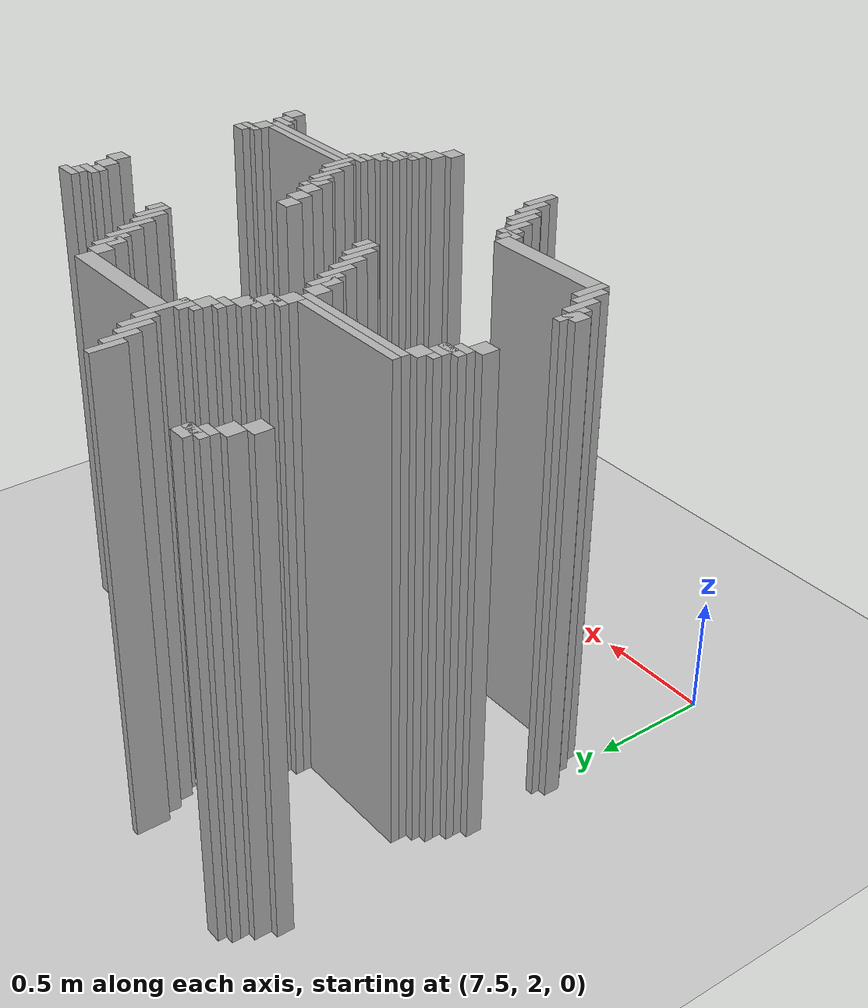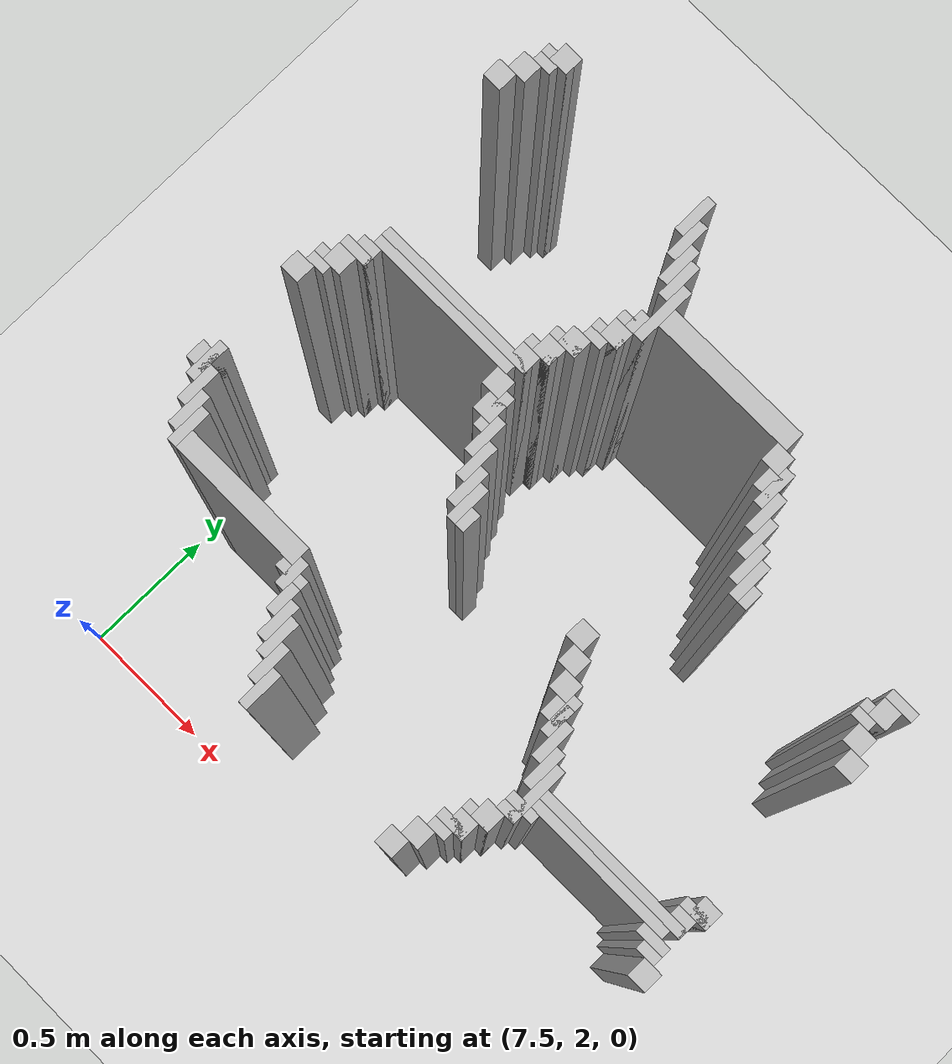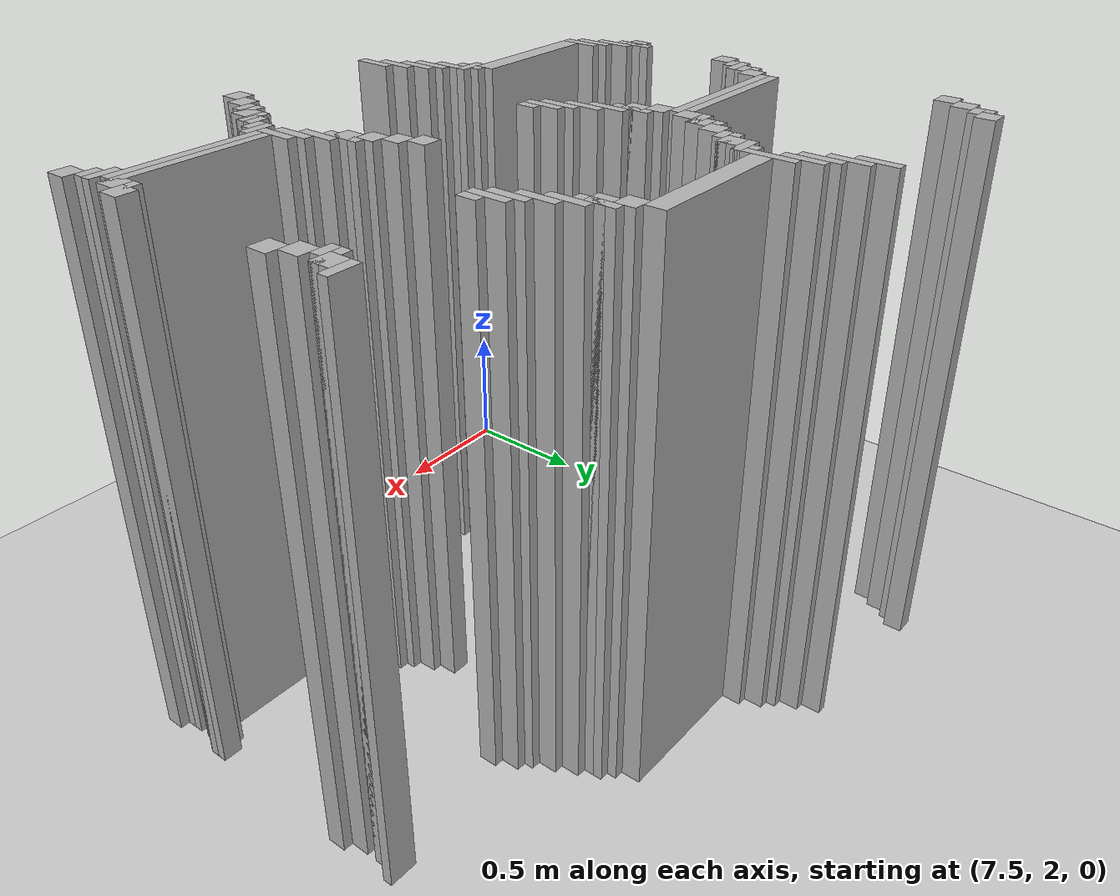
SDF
<sdf version="1.6">
 <world name="slam_world">
  <model name="ground_plane">
   <static>true</static>
   <link name="link">
    <collision name="collision">
     <geometry><plane><normal>0 0 1</normal><size>100 100</size></plane></geometry>
    </collision>
    <visual name="visual">
     <geometry><plane><normal>0 0 1</normal><size>100 100</size></plane></geometry>
     <material>
      <ambient>0.8 0.8 0.8 1</ambient>
      <diffuse>0.8 0.8 0.8 1</diffuse>
      <specular>0.8 0.8 0.8 1</specular>
     </material>
    </visual>
   </link>
  </model>
  <model name="wall_4448">
   <static>true</static>
   <pose>7.587006960556844 4.211136890951276 1.0 0 0 0</pose>
   <link name="link">
    <collision name="collision">
     <geometry><box><size>0.06960556844547564 0.06960556844547564 2.0</size></box></geometry>
    </collision>
    <visual name="visual">
     <geometry><box><size>0.06960556844547564 0.06960556844547564 2.0</size></box></geometry>
     <material><ambient>0.5 0.5 0.5 1</ambient><diffuse>0.7 0.7 0.7 1</diffuse></material>
    </visual>
   </link>
  </model>
  <model name="wall_4463">
   <static>true</static>
   <pose>7.569605568445476 4.193735498839907 1.0 0 0 0</pose>
   <link name="link">
    <collision name="collision">
     <geometry><box><size>0.10440835266821345 0.03480278422273782 2.0</size></box></geometry>
    </collision>
    <visual name="visual">
     <geometry><box><size>0.10440835266821345 0.03480278422273782 2.0</size></box></geometry>
     <material><ambient>0.5 0.5 0.5 1</ambient><diffuse>0.7 0.7 0.7 1</diffuse></material>
    </visual>
   </link>
  </model>
  <model name="wall_4464">
   <static>true</static>
   <pose>8.196055684454755 4.1415313225058 1.0 0 0 0</pose>
   <link name="link">
    <collision name="collision">
     <geometry><box><size>0.03480278422273782 0.13921113689095127 2.0</size></box></geometry>
    </collision>
    <visual name="visual">
     <geometry><box><size>0.03480278422273782 0.13921113689095127 2.0</size></box></geometry>
     <material><ambient>0.5 0.5 0.5 1</ambient><diffuse>0.7 0.7 0.7 1</diffuse></material>
    </visual>
   </link>
  </model>
  <model name="wall_4476">
   <static>true</static>
   <pose>7.552204176334106 4.158932714617169 1.0 0 0 0</pose>
   <link name="link">
    <collision name="collision">
     <geometry><box><size>0.06960556844547564 0.03480278422273782 2.0</size></box></geometry>
    </collision>
    <visual name="visual">
     <geometry><box><size>0.06960556844547564 0.03480278422273782 2.0</size></box></geometry>
     <material><ambient>0.5 0.5 0.5 1</ambient><diffuse>0.7 0.7 0.7 1</diffuse></material>
    </visual>
   </link>
  </model>
  <model name="wall_4488">
   <static>true</static>
   <pose>7.517401392111369 4.106728538283062 1.0 0 0 0</pose>
   <link name="link">
    <collision name="collision">
     <geometry><box><size>0.06960556844547564 0.06960556844547564 2.0</size></box></geometry>
    </collision>
    <visual name="visual">
     <geometry><box><size>0.06960556844547564 0.06960556844547564 2.0</size></box></geometry>
     <material><ambient>0.5 0.5 0.5 1</ambient><diffuse>0.7 0.7 0.7 1</diffuse></material>
    </visual>
   </link>
  </model>
  <model name="wall_4489">
   <static>true</static>
   <pose>8.230858468677495 4.071925754060325 1.0 0 0 0</pose>
   <link name="link">
    <collision name="collision">
     <geometry><box><size>0.03480278422273782 0.13921113689095127 2.0</size></box></geometry>
    </collision>
    <visual name="visual">
     <geometry><box><size>0.03480278422273782 0.13921113689095127 2.0</size></box></geometry>
     <material><ambient>0.5 0.5 0.5 1</ambient><diffuse>0.7 0.7 0.7 1</diffuse></material>
    </visual>
   </link>
  </model>
  <model name="wall_4503">
   <static>true</static>
   <pose>7.48259860788863 4.037122969837587 1.0 0 0 0</pose>
   <link name="link">
    <collision name="collision">
     <geometry><box><size>0.06960556844547564 0.06960556844547564 2.0</size></box></geometry>
    </collision>
    <visual name="visual">
     <geometry><box><size>0.06960556844547564 0.06960556844547564 2.0</size></box></geometry>
     <material><ambient>0.5 0.5 0.5 1</ambient><diffuse>0.7 0.7 0.7 1</diffuse></material>
    </visual>
   </link>
  </model>
  <model name="wall_4504">
   <static>true</static>
   <pose>8.265661252900232 4.002320185614849 1.0 0 0 0</pose>
   <link name="link">
    <collision name="collision">
     <geometry><box><size>0.03480278422273782 0.13921113689095127 2.0</size></box></geometry>
    </collision>
    <visual name="visual">
     <geometry><box><size>0.03480278422273782 0.13921113689095127 2.0</size></box></geometry>
     <material><ambient>0.5 0.5 0.5 1</ambient><diffuse>0.7 0.7 0.7 1</diffuse></material>
    </visual>
   </link>
  </model>
  <model name="wall_4519">
   <static>true</static>
   <pose>8.30046403712297 3.967517401392111 1.0 0 0 0</pose>
   <link name="link">
    <collision name="collision">
     <geometry><box><size>0.03480278422273782 0.13921113689095127 2.0</size></box></geometry>
    </collision>
    <visual name="visual">
     <geometry><box><size>0.03480278422273782 0.13921113689095127 2.0</size></box></geometry>
     <material><ambient>0.5 0.5 0.5 1</ambient><diffuse>0.7 0.7 0.7 1</diffuse></material>
    </visual>
   </link>
  </model>
  <model name="wall_4542">
   <static>true</static>
   <pose>8.335266821345707 3.863109048723898 1.0 0 0 0</pose>
   <link name="link">
    <collision name="collision">
     <geometry><box><size>0.03480278422273782 0.2088167053364269 2.0</size></box></geometry>
    </collision>
    <visual name="visual">
     <geometry><box><size>0.03480278422273782 0.2088167053364269 2.0</size></box></geometry>
     <material><ambient>0.5 0.5 0.5 1</ambient><diffuse>0.7 0.7 0.7 1</diffuse></material>
    </visual>
   </link>
  </model>
  <model name="wall_4564">
   <static>true</static>
   <pose>8.61368909512761 3.863109048723898 1.0 0 0 0</pose>
   <link name="link">
    <collision name="collision">
     <geometry><box><size>0.5220417633410672 0.06960556844547564 2.0</size></box></geometry>
    </collision>
    <visual name="visual">
     <geometry><box><size>0.5220417633410672 0.06960556844547564 2.0</size></box></geometry>
     <material><ambient>0.5 0.5 0.5 1</ambient><diffuse>0.7 0.7 0.7 1</diffuse></material>
    </visual>
   </link>
  </model>
  <model name="wall_4579">
   <static>true</static>
   <pose>8.317865429234338 3.793503480278422 1.0 0 0 0</pose>
   <link name="link">
    <collision name="collision">
     <geometry><box><size>0.06960556844547564 0.06960556844547564 2.0</size></box></geometry>
    </collision>
    <visual name="visual">
     <geometry><box><size>0.06960556844547564 0.06960556844547564 2.0</size></box></geometry>
     <material><ambient>0.5 0.5 0.5 1</ambient><diffuse>0.7 0.7 0.7 1</diffuse></material>
    </visual>
   </link>
  </model>
  <model name="wall_4580">
   <static>true</static>
   <pose>8.874709976798144 3.793503480278422 1.0 0 0 0</pose>
   <link name="link">
    <collision name="collision">
     <geometry><box><size>0.06960556844547564 0.06960556844547564 2.0</size></box></geometry>
    </collision>
    <visual name="visual">
     <geometry><box><size>0.06960556844547564 0.06960556844547564 2.0</size></box></geometry>
     <material><ambient>0.5 0.5 0.5 1</ambient><diffuse>0.7 0.7 0.7 1</diffuse></material>
    </visual>
   </link>
  </model>
  <model name="wall_4593">
   <static>true</static>
   <pose>8.30046403712297 3.776102088167053 1.0 0 0 0</pose>
   <link name="link">
    <collision name="collision">
     <geometry><box><size>0.10440835266821345 0.03480278422273782 2.0</size></box></geometry>
    </collision>
    <visual name="visual">
     <geometry><box><size>0.10440835266821345 0.03480278422273782 2.0</size></box></geometry>
     <material><ambient>0.5 0.5 0.5 1</ambient><diffuse>0.7 0.7 0.7 1</diffuse></material>
    </visual>
   </link>
  </model>
  <model name="wall_4594">
   <static>true</static>
   <pose>8.92691415313225 3.7238979118329465 1.0 0 0 0</pose>
   <link name="link">
    <collision name="collision">
     <geometry><box><size>0.03480278422273782 0.13921113689095127 2.0</size></box></geometry>
    </collision>
    <visual name="visual">
     <geometry><box><size>0.03480278422273782 0.13921113689095127 2.0</size></box></geometry>
     <material><ambient>0.5 0.5 0.5 1</ambient><diffuse>0.7 0.7 0.7 1</diffuse></material>
    </visual>
   </link>
  </model>
  <model name="wall_4607">
   <static>true</static>
   <pose>8.2830626450116 3.7238979118329465 1.0 0 0 0</pose>
   <link name="link">
    <collision name="collision">
     <geometry><box><size>0.06960556844547564 0.06960556844547564 2.0</size></box></geometry>
    </collision>
    <visual name="visual">
     <geometry><box><size>0.06960556844547564 0.06960556844547564 2.0</size></box></geometry>
     <material><ambient>0.5 0.5 0.5 1</ambient><diffuse>0.7 0.7 0.7 1</diffuse></material>
    </visual>
   </link>
  </model>
  <model name="wall_4608">
   <static>true</static>
   <pose>8.909512761020881 3.7238979118329465 1.0 0 0 0</pose>
   <link name="link">
    <collision name="collision">
     <geometry><box><size>0.06960556844547564 0.06960556844547564 2.0</size></box></geometry>
    </collision>
    <visual name="visual">
     <geometry><box><size>0.06960556844547564 0.06960556844547564 2.0</size></box></geometry>
     <material><ambient>0.5 0.5 0.5 1</ambient><diffuse>0.7 0.7 0.7 1</diffuse></material>
    </visual>
   </link>
  </model>
  <model name="wall_4621">
   <static>true</static>
   <pose>8.265661252900232 3.706496519721578 1.0 0 0 0</pose>
   <link name="link">
    <collision name="collision">
     <geometry><box><size>0.10440835266821345 0.03480278422273782 2.0</size></box></geometry>
    </collision>
    <visual name="visual">
     <geometry><box><size>0.10440835266821345 0.03480278422273782 2.0</size></box></geometry>
     <material><ambient>0.5 0.5 0.5 1</ambient><diffuse>0.7 0.7 0.7 1</diffuse></material>
    </visual>
   </link>
  </model>
  <model name="wall_4622">
   <static>true</static>
   <pose>8.961716937354987 3.6542923433874708 1.0 0 0 0</pose>
   <link name="link">
    <collision name="collision">
     <geometry><box><size>0.03480278422273782 0.13921113689095127 2.0</size></box></geometry>
    </collision>
    <visual name="visual">
     <geometry><box><size>0.03480278422273782 0.13921113689095127 2.0</size></box></geometry>
     <material><ambient>0.5 0.5 0.5 1</ambient><diffuse>0.7 0.7 0.7 1</diffuse></material>
    </visual>
   </link>
  </model>
  <model name="wall_4632">
   <static>true</static>
   <pose>8.248259860788863 3.67169373549884 1.0 0 0 0</pose>
   <link name="link">
    <collision name="collision">
     <geometry><box><size>0.06960556844547564 0.03480278422273782 2.0</size></box></geometry>
    </collision>
    <visual name="visual">
     <geometry><box><size>0.06960556844547564 0.03480278422273782 2.0</size></box></geometry>
     <material><ambient>0.5 0.5 0.5 1</ambient><diffuse>0.7 0.7 0.7 1</diffuse></material>
    </visual>
   </link>
  </model>
  <model name="wall_4644">
   <static>true</static>
   <pose>8.213457076566124 3.619489559164733 1.0 0 0 0</pose>
   <link name="link">
    <collision name="collision">
     <geometry><box><size>0.06960556844547564 0.06960556844547564 2.0</size></box></geometry>
    </collision>
    <visual name="visual">
     <geometry><box><size>0.06960556844547564 0.06960556844547564 2.0</size></box></geometry>
     <material><ambient>0.5 0.5 0.5 1</ambient><diffuse>0.7 0.7 0.7 1</diffuse></material>
    </visual>
   </link>
  </model>
  <model name="wall_4645">
   <static>true</static>
   <pose>8.996519721577727 3.584686774941995 1.0 0 0 0</pose>
   <link name="link">
    <collision name="collision">
     <geometry><box><size>0.03480278422273782 0.13921113689095127 2.0</size></box></geometry>
    </collision>
    <visual name="visual">
     <geometry><box><size>0.03480278422273782 0.13921113689095127 2.0</size></box></geometry>
     <material><ambient>0.5 0.5 0.5 1</ambient><diffuse>0.7 0.7 0.7 1</diffuse></material>
    </visual>
   </link>
  </model>
  <model name="wall_4655">
   <static>true</static>
   <pose>8.196055684454755 3.602088167053364 1.0 0 0 0</pose>
   <link name="link">
    <collision name="collision">
     <geometry><box><size>0.10440835266821345 0.03480278422273782 2.0</size></box></geometry>
    </collision>
    <visual name="visual">
     <geometry><box><size>0.10440835266821345 0.03480278422273782 2.0</size></box></geometry>
     <material><ambient>0.5 0.5 0.5 1</ambient><diffuse>0.7 0.7 0.7 1</diffuse></material>
    </visual>
   </link>
  </model>
  <model name="wall_4667">
   <static>true</static>
   <pose>8.178654292343387 3.549883990719257 1.0 0 0 0</pose>
   <link name="link">
    <collision name="collision">
     <geometry><box><size>0.06960556844547564 0.06960556844547564 2.0</size></box></geometry>
    </collision>
    <visual name="visual">
     <geometry><box><size>0.06960556844547564 0.06960556844547564 2.0</size></box></geometry>
     <material><ambient>0.5 0.5 0.5 1</ambient><diffuse>0.7 0.7 0.7 1</diffuse></material>
    </visual>
   </link>
  </model>
  <model name="wall_4668">
   <static>true</static>
   <pose>9.031322505800464 3.51508120649652 1.0 0 0 0</pose>
   <link name="link">
    <collision name="collision">
     <geometry><box><size>0.03480278422273782 0.13921113689095127 2.0</size></box></geometry>
    </collision>
    <visual name="visual">
     <geometry><box><size>0.03480278422273782 0.13921113689095127 2.0</size></box></geometry>
     <material><ambient>0.5 0.5 0.5 1</ambient><diffuse>0.7 0.7 0.7 1</diffuse></material>
    </visual>
   </link>
  </model>
  <model name="wall_4681">
   <static>true</static>
   <pose>8.161252900232018 3.5324825986078885 1.0 0 0 0</pose>
   <link name="link">
    <collision name="collision">
     <geometry><box><size>0.10440835266821345 0.03480278422273782 2.0</size></box></geometry>
    </collision>
    <visual name="visual">
     <geometry><box><size>0.10440835266821345 0.03480278422273782 2.0</size></box></geometry>
     <material><ambient>0.5 0.5 0.5 1</ambient><diffuse>0.7 0.7 0.7 1</diffuse></material>
    </visual>
   </link>
  </model>
  <model name="wall_4682">
   <static>true</static>
   <pose>9.066125290023201 3.480278422273782 1.0 0 0 0</pose>
   <link name="link">
    <collision name="collision">
     <geometry><box><size>0.03480278422273782 0.13921113689095127 2.0</size></box></geometry>
    </collision>
    <visual name="visual">
     <geometry><box><size>0.03480278422273782 0.13921113689095127 2.0</size></box></geometry>
     <material><ambient>0.5 0.5 0.5 1</ambient><diffuse>0.7 0.7 0.7 1</diffuse></material>
    </visual>
   </link>
  </model>
  <model name="wall_4683">
   <static>true</static>
   <pose>9.622969837587007 3.5324825986078885 1.0 0 0 0</pose>
   <link name="link">
    <collision name="collision">
     <geometry><box><size>0.10440835266821345 0.03480278422273782 2.0</size></box></geometry>
    </collision>
    <visual name="visual">
     <geometry><box><size>0.10440835266821345 0.03480278422273782 2.0</size></box></geometry>
     <material><ambient>0.5 0.5 0.5 1</ambient><diffuse>0.7 0.7 0.7 1</diffuse></material>
    </visual>
   </link>
  </model>
  <model name="wall_4692">
   <static>true</static>
   <pose>8.14385150812065 3.480278422273782 1.0 0 0 0</pose>
   <link name="link">
    <collision name="collision">
     <geometry><box><size>0.06960556844547564 0.06960556844547564 2.0</size></box></geometry>
    </collision>
    <visual name="visual">
     <geometry><box><size>0.06960556844547564 0.06960556844547564 2.0</size></box></geometry>
     <material><ambient>0.5 0.5 0.5 1</ambient><diffuse>0.7 0.7 0.7 1</diffuse></material>
    </visual>
   </link>
  </model>
  <model name="wall_4693">
   <static>true</static>
   <pose>9.605568445475638 3.480278422273782 1.0 0 0 0</pose>
   <link name="link">
    <collision name="collision">
     <geometry><box><size>0.06960556844547564 0.06960556844547564 2.0</size></box></geometry>
    </collision>
    <visual name="visual">
     <geometry><box><size>0.06960556844547564 0.06960556844547564 2.0</size></box></geometry>
     <material><ambient>0.5 0.5 0.5 1</ambient><diffuse>0.7 0.7 0.7 1</diffuse></material>
    </visual>
   </link>
  </model>
  <model name="wall_4703">
   <static>true</static>
   <pose>7.882830626450116 3.4628770301624128 1.0 0 0 0</pose>
   <link name="link">
    <collision name="collision">
     <geometry><box><size>0.5916473317865429 0.03480278422273782 2.0</size></box></geometry>
    </collision>
    <visual name="visual">
     <geometry><box><size>0.5916473317865429 0.03480278422273782 2.0</size></box></geometry>
     <material><ambient>0.5 0.5 0.5 1</ambient><diffuse>0.7 0.7 0.7 1</diffuse></material>
    </visual>
   </link>
  </model>
  <model name="wall_4704">
   <static>true</static>
   <pose>9.100928074245939 3.445475638051044 1.0 0 0 0</pose>
   <link name="link">
    <collision name="collision">
     <geometry><box><size>0.03480278422273782 0.06960556844547564 2.0</size></box></geometry>
    </collision>
    <visual name="visual">
     <geometry><box><size>0.03480278422273782 0.06960556844547564 2.0</size></box></geometry>
     <material><ambient>0.5 0.5 0.5 1</ambient><diffuse>0.7 0.7 0.7 1</diffuse></material>
    </visual>
   </link>
  </model>
  <model name="wall_4705">
   <static>true</static>
   <pose>9.588167053364268 3.4628770301624128 1.0 0 0 0</pose>
   <link name="link">
    <collision name="collision">
     <geometry><box><size>0.10440835266821345 0.03480278422273782 2.0</size></box></geometry>
    </collision>
    <visual name="visual">
     <geometry><box><size>0.10440835266821345 0.03480278422273782 2.0</size></box></geometry>
     <material><ambient>0.5 0.5 0.5 1</ambient><diffuse>0.7 0.7 0.7 1</diffuse></material>
    </visual>
   </link>
  </model>
  <model name="wall_4715">
   <static>true</static>
   <pose>7.865429234338746 3.428074245939675 1.0 0 0 0</pose>
   <link name="link">
    <collision name="collision">
     <geometry><box><size>0.5568445475638051 0.03480278422273782 2.0</size></box></geometry>
    </collision>
    <visual name="visual">
     <geometry><box><size>0.5568445475638051 0.03480278422273782 2.0</size></box></geometry>
     <material><ambient>0.5 0.5 0.5 1</ambient><diffuse>0.7 0.7 0.7 1</diffuse></material>
    </visual>
   </link>
  </model>
  <model name="wall_4716">
   <static>true</static>
   <pose>9.5707656612529 3.428074245939675 1.0 0 0 0</pose>
   <link name="link">
    <collision name="collision">
     <geometry><box><size>0.06960556844547564 0.03480278422273782 2.0</size></box></geometry>
    </collision>
    <visual name="visual">
     <geometry><box><size>0.06960556844547564 0.03480278422273782 2.0</size></box></geometry>
     <material><ambient>0.5 0.5 0.5 1</ambient><diffuse>0.7 0.7 0.7 1</diffuse></material>
    </visual>
   </link>
  </model>
  <model name="wall_4725">
   <static>true</static>
   <pose>7.587006960556844 3.3758700696055683 1.0 0 0 0</pose>
   <link name="link">
    <collision name="collision">
     <geometry><box><size>0.06960556844547564 0.06960556844547564 2.0</size></box></geometry>
    </collision>
    <visual name="visual">
     <geometry><box><size>0.06960556844547564 0.06960556844547564 2.0</size></box></geometry>
     <material><ambient>0.5 0.5 0.5 1</ambient><diffuse>0.7 0.7 0.7 1</diffuse></material>
    </visual>
   </link>
  </model>
  <model name="wall_4726">
   <static>true</static>
   <pose>8.14385150812065 3.3758700696055683 1.0 0 0 0</pose>
   <link name="link">
    <collision name="collision">
     <geometry><box><size>0.06960556844547564 0.06960556844547564 2.0</size></box></geometry>
    </collision>
    <visual name="visual">
     <geometry><box><size>0.06960556844547564 0.06960556844547564 2.0</size></box></geometry>
     <material><ambient>0.5 0.5 0.5 1</ambient><diffuse>0.7 0.7 0.7 1</diffuse></material>
    </visual>
   </link>
  </model>
  <model name="wall_4727">
   <static>true</static>
   <pose>9.605568445475638 3.3758700696055683 1.0 0 0 0</pose>
   <link name="link">
    <collision name="collision">
     <geometry><box><size>0.06960556844547564 0.06960556844547564 2.0</size></box></geometry>
    </collision>
    <visual name="visual">
     <geometry><box><size>0.06960556844547564 0.06960556844547564 2.0</size></box></geometry>
     <material><ambient>0.5 0.5 0.5 1</ambient><diffuse>0.7 0.7 0.7 1</diffuse></material>
    </visual>
   </link>
  </model>
  <model name="wall_4739">
   <static>true</static>
   <pose>7.569605568445476 3.358468677494199 1.0 0 0 0</pose>
   <link name="link">
    <collision name="collision">
     <geometry><box><size>0.10440835266821345 0.03480278422273782 2.0</size></box></geometry>
    </collision>
    <visual name="visual">
     <geometry><box><size>0.10440835266821345 0.03480278422273782 2.0</size></box></geometry>
     <material><ambient>0.5 0.5 0.5 1</ambient><diffuse>0.7 0.7 0.7 1</diffuse></material>
    </visual>
   </link>
  </model>
  <model name="wall_4740">
   <static>true</static>
   <pose>8.196055684454755 3.3062645011600926 1.0 0 0 0</pose>
   <link name="link">
    <collision name="collision">
     <geometry><box><size>0.03480278422273782 0.13921113689095127 2.0</size></box></geometry>
    </collision>
    <visual name="visual">
     <geometry><box><size>0.03480278422273782 0.13921113689095127 2.0</size></box></geometry>
     <material><ambient>0.5 0.5 0.5 1</ambient><diffuse>0.7 0.7 0.7 1</diffuse></material>
    </visual>
   </link>
  </model>
  <model name="wall_4753">
   <static>true</static>
   <pose>7.552204176334106 3.3062645011600926 1.0 0 0 0</pose>
   <link name="link">
    <collision name="collision">
     <geometry><box><size>0.06960556844547564 0.06960556844547564 2.0</size></box></geometry>
    </collision>
    <visual name="visual">
     <geometry><box><size>0.06960556844547564 0.06960556844547564 2.0</size></box></geometry>
     <material><ambient>0.5 0.5 0.5 1</ambient><diffuse>0.7 0.7 0.7 1</diffuse></material>
    </visual>
   </link>
  </model>
  <model name="wall_4754">
   <static>true</static>
   <pose>8.178654292343387 3.3062645011600926 1.0 0 0 0</pose>
   <link name="link">
    <collision name="collision">
     <geometry><box><size>0.06960556844547564 0.06960556844547564 2.0</size></box></geometry>
    </collision>
    <visual name="visual">
     <geometry><box><size>0.06960556844547564 0.06960556844547564 2.0</size></box></geometry>
     <material><ambient>0.5 0.5 0.5 1</ambient><diffuse>0.7 0.7 0.7 1</diffuse></material>
    </visual>
   </link>
  </model>
  <model name="wall_4755">
   <static>true</static>
   <pose>9.640371229698376 3.3062645011600926 1.0 0 0 0</pose>
   <link name="link">
    <collision name="collision">
     <geometry><box><size>0.06960556844547564 0.06960556844547564 2.0</size></box></geometry>
    </collision>
    <visual name="visual">
     <geometry><box><size>0.06960556844547564 0.06960556844547564 2.0</size></box></geometry>
     <material><ambient>0.5 0.5 0.5 1</ambient><diffuse>0.7 0.7 0.7 1</diffuse></material>
    </visual>
   </link>
  </model>
  <model name="wall_4767">
   <static>true</static>
   <pose>7.534802784222737 3.288863109048724 1.0 0 0 0</pose>
   <link name="link">
    <collision name="collision">
     <geometry><box><size>0.10440835266821345 0.03480278422273782 2.0</size></box></geometry>
    </collision>
    <visual name="visual">
     <geometry><box><size>0.10440835266821345 0.03480278422273782 2.0</size></box></geometry>
     <material><ambient>0.5 0.5 0.5 1</ambient><diffuse>0.7 0.7 0.7 1</diffuse></material>
    </visual>
   </link>
  </model>
  <model name="wall_4768">
   <static>true</static>
   <pose>8.230858468677495 3.236658932714617 1.0 0 0 0</pose>
   <link name="link">
    <collision name="collision">
     <geometry><box><size>0.03480278422273782 0.13921113689095127 2.0</size></box></geometry>
    </collision>
    <visual name="visual">
     <geometry><box><size>0.03480278422273782 0.13921113689095127 2.0</size></box></geometry>
     <material><ambient>0.5 0.5 0.5 1</ambient><diffuse>0.7 0.7 0.7 1</diffuse></material>
    </visual>
   </link>
  </model>
  <model name="wall_4778">
   <static>true</static>
   <pose>7.517401392111369 3.254060324825986 1.0 0 0 0</pose>
   <link name="link">
    <collision name="collision">
     <geometry><box><size>0.06960556844547564 0.03480278422273782 2.0</size></box></geometry>
    </collision>
    <visual name="visual">
     <geometry><box><size>0.06960556844547564 0.03480278422273782 2.0</size></box></geometry>
     <material><ambient>0.5 0.5 0.5 1</ambient><diffuse>0.7 0.7 0.7 1</diffuse></material>
    </visual>
   </link>
  </model>
  <model name="wall_4788">
   <static>true</static>
   <pose>7.48259860788863 3.201856148491879 1.0 0 0 0</pose>
   <link name="link">
    <collision name="collision">
     <geometry><box><size>0.06960556844547564 0.06960556844547564 2.0</size></box></geometry>
    </collision>
    <visual name="visual">
     <geometry><box><size>0.06960556844547564 0.06960556844547564 2.0</size></box></geometry>
     <material><ambient>0.5 0.5 0.5 1</ambient><diffuse>0.7 0.7 0.7 1</diffuse></material>
    </visual>
   </link>
  </model>
  <model name="wall_4789">
   <static>true</static>
   <pose>8.265661252900232 3.167053364269141 1.0 0 0 0</pose>
   <link name="link">
    <collision name="collision">
     <geometry><box><size>0.03480278422273782 0.13921113689095127 2.0</size></box></geometry>
    </collision>
    <visual name="visual">
     <geometry><box><size>0.03480278422273782 0.13921113689095127 2.0</size></box></geometry>
     <material><ambient>0.5 0.5 0.5 1</ambient><diffuse>0.7 0.7 0.7 1</diffuse></material>
    </visual>
   </link>
  </model>
  <model name="wall_4803">
   <static>true</static>
   <pose>8.30046403712297 3.097447795823666 1.0 0 0 0</pose>
   <link name="link">
    <collision name="collision">
     <geometry><box><size>0.03480278422273782 0.13921113689095127 2.0</size></box></geometry>
    </collision>
    <visual name="visual">
     <geometry><box><size>0.03480278422273782 0.13921113689095127 2.0</size></box></geometry>
     <material><ambient>0.5 0.5 0.5 1</ambient><diffuse>0.7 0.7 0.7 1</diffuse></material>
    </visual>
   </link>
  </model>
  <model name="wall_4817">
   <static>true</static>
   <pose>8.335266821345707 3.062645011600928 1.0 0 0 0</pose>
   <link name="link">
    <collision name="collision">
     <geometry><box><size>0.03480278422273782 0.13921113689095127 2.0</size></box></geometry>
    </collision>
    <visual name="visual">
     <geometry><box><size>0.03480278422273782 0.13921113689095127 2.0</size></box></geometry>
     <material><ambient>0.5 0.5 0.5 1</ambient><diffuse>0.7 0.7 0.7 1</diffuse></material>
    </visual>
   </link>
  </model>
  <model name="wall_4839">
   <static>true</static>
   <pose>8.370069605568444 3.02784222737819 1.0 0 0 0</pose>
   <link name="link">
    <collision name="collision">
     <geometry><box><size>0.03480278422273782 0.06960556844547564 2.0</size></box></geometry>
    </collision>
    <visual name="visual">
     <geometry><box><size>0.03480278422273782 0.06960556844547564 2.0</size></box></geometry>
     <material><ambient>0.5 0.5 0.5 1</ambient><diffuse>0.7 0.7 0.7 1</diffuse></material>
    </visual>
   </link>
  </model>
  <model name="wall_4840">
   <static>true</static>
   <pose>8.839907192575406 3.02784222737819 1.0 0 0 0</pose>
   <link name="link">
    <collision name="collision">
     <geometry><box><size>0.06960556844547564 0.06960556844547564 2.0</size></box></geometry>
    </collision>
    <visual name="visual">
     <geometry><box><size>0.06960556844547564 0.06960556844547564 2.0</size></box></geometry>
     <material><ambient>0.5 0.5 0.5 1</ambient><diffuse>0.7 0.7 0.7 1</diffuse></material>
    </visual>
   </link>
  </model>
  <model name="wall_4862">
   <static>true</static>
   <pose>8.874709976798144 2.9582366589327145 1.0 0 0 0</pose>
   <link name="link">
    <collision name="collision">
     <geometry><box><size>0.06960556844547564 0.06960556844547564 2.0</size></box></geometry>
    </collision>
    <visual name="visual">
     <geometry><box><size>0.06960556844547564 0.06960556844547564 2.0</size></box></geometry>
     <material><ambient>0.5 0.5 0.5 1</ambient><diffuse>0.7 0.7 0.7 1</diffuse></material>
    </visual>
   </link>
  </model>
  <model name="wall_4880">
   <static>true</static>
   <pose>8.909512761020881 2.8886310904872388 1.0 0 0 0</pose>
   <link name="link">
    <collision name="collision">
     <geometry><box><size>0.06960556844547564 0.06960556844547564 2.0</size></box></geometry>
    </collision>
    <visual name="visual">
     <geometry><box><size>0.06960556844547564 0.06960556844547564 2.0</size></box></geometry>
     <material><ambient>0.5 0.5 0.5 1</ambient><diffuse>0.7 0.7 0.7 1</diffuse></material>
    </visual>
   </link>
  </model>
  <model name="wall_4895">
   <static>true</static>
   <pose>7.5 2.819025522041763 1.0 0 0 0</pose>
   <link name="link">
    <collision name="collision">
     <geometry><box><size>0.03480278422273782 0.13921113689095127 2.0</size></box></geometry>
    </collision>
    <visual name="visual">
     <geometry><box><size>0.03480278422273782 0.13921113689095127 2.0</size></box></geometry>
     <material><ambient>0.5 0.5 0.5 1</ambient><diffuse>0.7 0.7 0.7 1</diffuse></material>
    </visual>
   </link>
  </model>
  <model name="wall_4896">
   <static>true</static>
   <pose>8.961716937354987 2.819025522041763 1.0 0 0 0</pose>
   <link name="link">
    <collision name="collision">
     <geometry><box><size>0.03480278422273782 0.13921113689095127 2.0</size></box></geometry>
    </collision>
    <visual name="visual">
     <geometry><box><size>0.03480278422273782 0.13921113689095127 2.0</size></box></geometry>
     <material><ambient>0.5 0.5 0.5 1</ambient><diffuse>0.7 0.7 0.7 1</diffuse></material>
    </visual>
   </link>
  </model>
  <model name="wall_4911">
   <static>true</static>
   <pose>7.48259860788863 2.819025522041763 1.0 0 0 0</pose>
   <link name="link">
    <collision name="collision">
     <geometry><box><size>0.06960556844547564 0.06960556844547564 2.0</size></box></geometry>
    </collision>
    <visual name="visual">
     <geometry><box><size>0.06960556844547564 0.06960556844547564 2.0</size></box></geometry>
     <material><ambient>0.5 0.5 0.5 1</ambient><diffuse>0.7 0.7 0.7 1</diffuse></material>
    </visual>
   </link>
  </model>
  <model name="wall_4912">
   <static>true</static>
   <pose>8.944315545243619 2.819025522041763 1.0 0 0 0</pose>
   <link name="link">
    <collision name="collision">
     <geometry><box><size>0.06960556844547564 0.06960556844547564 2.0</size></box></geometry>
    </collision>
    <visual name="visual">
     <geometry><box><size>0.06960556844547564 0.06960556844547564 2.0</size></box></geometry>
     <material><ambient>0.5 0.5 0.5 1</ambient><diffuse>0.7 0.7 0.7 1</diffuse></material>
    </visual>
   </link>
  </model>
  <model name="wall_4927">
   <static>true</static>
   <pose>7.534802784222737 2.7494199535962878 1.0 0 0 0</pose>
   <link name="link">
    <collision name="collision">
     <geometry><box><size>0.03480278422273782 0.13921113689095127 2.0</size></box></geometry>
    </collision>
    <visual name="visual">
     <geometry><box><size>0.03480278422273782 0.13921113689095127 2.0</size></box></geometry>
     <material><ambient>0.5 0.5 0.5 1</ambient><diffuse>0.7 0.7 0.7 1</diffuse></material>
    </visual>
   </link>
  </model>
  <model name="wall_4928">
   <static>true</static>
   <pose>8.996519721577727 2.7494199535962878 1.0 0 0 0</pose>
   <link name="link">
    <collision name="collision">
     <geometry><box><size>0.03480278422273782 0.13921113689095127 2.0</size></box></geometry>
    </collision>
    <visual name="visual">
     <geometry><box><size>0.03480278422273782 0.13921113689095127 2.0</size></box></geometry>
     <material><ambient>0.5 0.5 0.5 1</ambient><diffuse>0.7 0.7 0.7 1</diffuse></material>
    </visual>
   </link>
  </model>
  <model name="wall_4950">
   <static>true</static>
   <pose>7.569605568445476 2.679814385150812 1.0 0 0 0</pose>
   <link name="link">
    <collision name="collision">
     <geometry><box><size>0.03480278422273782 0.13921113689095127 2.0</size></box></geometry>
    </collision>
    <visual name="visual">
     <geometry><box><size>0.03480278422273782 0.13921113689095127 2.0</size></box></geometry>
     <material><ambient>0.5 0.5 0.5 1</ambient><diffuse>0.7 0.7 0.7 1</diffuse></material>
    </visual>
   </link>
  </model>
  <model name="wall_4951">
   <static>true</static>
   <pose>9.031322505800464 2.679814385150812 1.0 0 0 0</pose>
   <link name="link">
    <collision name="collision">
     <geometry><box><size>0.03480278422273782 0.13921113689095127 2.0</size></box></geometry>
    </collision>
    <visual name="visual">
     <geometry><box><size>0.03480278422273782 0.13921113689095127 2.0</size></box></geometry>
     <material><ambient>0.5 0.5 0.5 1</ambient><diffuse>0.7 0.7 0.7 1</diffuse></material>
    </visual>
   </link>
  </model>
  <model name="wall_4952">
   <static>true</static>
   <pose>9.640371229698376 2.71461716937355 1.0 0 0 0</pose>
   <link name="link">
    <collision name="collision">
     <geometry><box><size>0.06960556844547564 0.06960556844547564 2.0</size></box></geometry>
    </collision>
    <visual name="visual">
     <geometry><box><size>0.06960556844547564 0.06960556844547564 2.0</size></box></geometry>
     <material><ambient>0.5 0.5 0.5 1</ambient><diffuse>0.7 0.7 0.7 1</diffuse></material>
    </visual>
   </link>
  </model>
  <model name="wall_4966">
   <static>true</static>
   <pose>7.604408352668213 2.645011600928074 1.0 0 0 0</pose>
   <link name="link">
    <collision name="collision">
     <geometry><box><size>0.03480278422273782 0.13921113689095127 2.0</size></box></geometry>
    </collision>
    <visual name="visual">
     <geometry><box><size>0.03480278422273782 0.13921113689095127 2.0</size></box></geometry>
     <material><ambient>0.5 0.5 0.5 1</ambient><diffuse>0.7 0.7 0.7 1</diffuse></material>
    </visual>
   </link>
  </model>
  <model name="wall_4967">
   <static>true</static>
   <pose>9.066125290023201 2.6102088167053363 1.0 0 0 0</pose>
   <link name="link">
    <collision name="collision">
     <geometry><box><size>0.03480278422273782 0.2088167053364269 2.0</size></box></geometry>
    </collision>
    <visual name="visual">
     <geometry><box><size>0.03480278422273782 0.2088167053364269 2.0</size></box></geometry>
     <material><ambient>0.5 0.5 0.5 1</ambient><diffuse>0.7 0.7 0.7 1</diffuse></material>
    </visual>
   </link>
  </model>
  <model name="wall_4968">
   <static>true</static>
   <pose>9.622969837587007 2.6972157772621808 1.0 0 0 0</pose>
   <link name="link">
    <collision name="collision">
     <geometry><box><size>0.10440835266821345 0.03480278422273782 2.0</size></box></geometry>
    </collision>
    <visual name="visual">
     <geometry><box><size>0.10440835266821345 0.03480278422273782 2.0</size></box></geometry>
     <material><ambient>0.5 0.5 0.5 1</ambient><diffuse>0.7 0.7 0.7 1</diffuse></material>
    </visual>
   </link>
  </model>
  <model name="wall_4978">
   <static>true</static>
   <pose>9.605568445475638 2.645011600928074 1.0 0 0 0</pose>
   <link name="link">
    <collision name="collision">
     <geometry><box><size>0.06960556844547564 0.06960556844547564 2.0</size></box></geometry>
    </collision>
    <visual name="visual">
     <geometry><box><size>0.06960556844547564 0.06960556844547564 2.0</size></box></geometry>
     <material><ambient>0.5 0.5 0.5 1</ambient><diffuse>0.7 0.7 0.7 1</diffuse></material>
    </visual>
   </link>
  </model>
  <model name="wall_4988">
   <static>true</static>
   <pose>7.865429234338746 2.6102088167053363 1.0 0 0 0</pose>
   <link name="link">
    <collision name="collision">
     <geometry><box><size>0.4872389791183295 0.06960556844547564 2.0</size></box></geometry>
    </collision>
    <visual name="visual">
     <geometry><box><size>0.4872389791183295 0.06960556844547564 2.0</size></box></geometry>
     <material><ambient>0.5 0.5 0.5 1</ambient><diffuse>0.7 0.7 0.7 1</diffuse></material>
    </visual>
   </link>
  </model>
  <model name="wall_4989">
   <static>true</static>
   <pose>9.361948955916473 2.627610208816705 1.0 0 0 0</pose>
   <link name="link">
    <collision name="collision">
     <geometry><box><size>0.5568445475638051 0.03480278422273782 2.0</size></box></geometry>
    </collision>
    <visual name="visual">
     <geometry><box><size>0.5568445475638051 0.03480278422273782 2.0</size></box></geometry>
     <material><ambient>0.5 0.5 0.5 1</ambient><diffuse>0.7 0.7 0.7 1</diffuse></material>
    </visual>
   </link>
  </model>
  <model name="wall_5001">
   <static>true</static>
   <pose>8.12645011600928 2.5580046403712298 1.0 0 0 0</pose>
   <link name="link">
    <collision name="collision">
     <geometry><box><size>0.03480278422273782 0.10440835266821345 2.0</size></box></geometry>
    </collision>
    <visual name="visual">
     <geometry><box><size>0.03480278422273782 0.10440835266821345 2.0</size></box></geometry>
     <material><ambient>0.5 0.5 0.5 1</ambient><diffuse>0.7 0.7 0.7 1</diffuse></material>
    </visual>
   </link>
  </model>
  <model name="wall_5002">
   <static>true</static>
   <pose>9.344547563805104 2.5928074245939676 1.0 0 0 0</pose>
   <link name="link">
    <collision name="collision">
     <geometry><box><size>0.5220417633410672 0.03480278422273782 2.0</size></box></geometry>
    </collision>
    <visual name="visual">
     <geometry><box><size>0.5220417633410672 0.03480278422273782 2.0</size></box></geometry>
     <material><ambient>0.5 0.5 0.5 1</ambient><diffuse>0.7 0.7 0.7 1</diffuse></material>
    </visual>
   </link>
  </model>
  <model name="wall_5015">
   <static>true</static>
   <pose>8.12645011600928 2.5580046403712298 1.0 0 0 0</pose>
   <link name="link">
    <collision name="collision">
     <geometry><box><size>0.10440835266821345 0.03480278422273782 2.0</size></box></geometry>
    </collision>
    <visual name="visual">
     <geometry><box><size>0.10440835266821345 0.03480278422273782 2.0</size></box></geometry>
     <material><ambient>0.5 0.5 0.5 1</ambient><diffuse>0.7 0.7 0.7 1</diffuse></material>
    </visual>
   </link>
  </model>
  <model name="wall_5016">
   <static>true</static>
   <pose>9.066125290023201 2.5580046403712298 1.0 0 0 0</pose>
   <link name="link">
    <collision name="collision">
     <geometry><box><size>0.10440835266821345 0.03480278422273782 2.0</size></box></geometry>
    </collision>
    <visual name="visual">
     <geometry><box><size>0.10440835266821345 0.03480278422273782 2.0</size></box></geometry>
     <material><ambient>0.5 0.5 0.5 1</ambient><diffuse>0.7 0.7 0.7 1</diffuse></material>
    </visual>
   </link>
  </model>
  <model name="wall_5017">
   <static>true</static>
   <pose>9.588167053364268 2.5580046403712298 1.0 0 0 0</pose>
   <link name="link">
    <collision name="collision">
     <geometry><box><size>0.10440835266821345 0.03480278422273782 2.0</size></box></geometry>
    </collision>
    <visual name="visual">
     <geometry><box><size>0.10440835266821345 0.03480278422273782 2.0</size></box></geometry>
     <material><ambient>0.5 0.5 0.5 1</ambient><diffuse>0.7 0.7 0.7 1</diffuse></material>
    </visual>
   </link>
  </model>
  <model name="wall_5028">
   <static>true</static>
   <pose>8.161252900232018 2.488399071925754 1.0 0 0 0</pose>
   <link name="link">
    <collision name="collision">
     <geometry><box><size>0.03480278422273782 0.10440835266821345 2.0</size></box></geometry>
    </collision>
    <visual name="visual">
     <geometry><box><size>0.03480278422273782 0.10440835266821345 2.0</size></box></geometry>
     <material><ambient>0.5 0.5 0.5 1</ambient><diffuse>0.7 0.7 0.7 1</diffuse></material>
    </visual>
   </link>
  </model>
  <model name="wall_5029">
   <static>true</static>
   <pose>9.048723897911833 2.523201856148492 1.0 0 0 0</pose>
   <link name="link">
    <collision name="collision">
     <geometry><box><size>0.06960556844547564 0.03480278422273782 2.0</size></box></geometry>
    </collision>
    <visual name="visual">
     <geometry><box><size>0.06960556844547564 0.03480278422273782 2.0</size></box></geometry>
     <material><ambient>0.5 0.5 0.5 1</ambient><diffuse>0.7 0.7 0.7 1</diffuse></material>
    </visual>
   </link>
  </model>
  <model name="wall_5030">
   <static>true</static>
   <pose>9.605568445475638 2.523201856148492 1.0 0 0 0</pose>
   <link name="link">
    <collision name="collision">
     <geometry><box><size>0.06960556844547564 0.03480278422273782 2.0</size></box></geometry>
    </collision>
    <visual name="visual">
     <geometry><box><size>0.06960556844547564 0.03480278422273782 2.0</size></box></geometry>
     <material><ambient>0.5 0.5 0.5 1</ambient><diffuse>0.7 0.7 0.7 1</diffuse></material>
    </visual>
   </link>
  </model>
  <model name="wall_5039">
   <static>true</static>
   <pose>8.196055684454755 2.436194895591647 1.0 0 0 0</pose>
   <link name="link">
    <collision name="collision">
     <geometry><box><size>0.03480278422273782 0.13921113689095127 2.0</size></box></geometry>
    </collision>
    <visual name="visual">
     <geometry><box><size>0.03480278422273782 0.13921113689095127 2.0</size></box></geometry>
     <material><ambient>0.5 0.5 0.5 1</ambient><diffuse>0.7 0.7 0.7 1</diffuse></material>
    </visual>
   </link>
  </model>
  <model name="wall_5040">
   <static>true</static>
   <pose>9.013921113689095 2.470997679814385 1.0 0 0 0</pose>
   <link name="link">
    <collision name="collision">
     <geometry><box><size>0.06960556844547564 0.06960556844547564 2.0</size></box></geometry>
    </collision>
    <visual name="visual">
     <geometry><box><size>0.06960556844547564 0.06960556844547564 2.0</size></box></geometry>
     <material><ambient>0.5 0.5 0.5 1</ambient><diffuse>0.7 0.7 0.7 1</diffuse></material>
    </visual>
   </link>
  </model>
  <model name="wall_5041">
   <static>true</static>
   <pose>9.640371229698376 2.470997679814385 1.0 0 0 0</pose>
   <link name="link">
    <collision name="collision">
     <geometry><box><size>0.06960556844547564 0.06960556844547564 2.0</size></box></geometry>
    </collision>
    <visual name="visual">
     <geometry><box><size>0.06960556844547564 0.06960556844547564 2.0</size></box></geometry>
     <material><ambient>0.5 0.5 0.5 1</ambient><diffuse>0.7 0.7 0.7 1</diffuse></material>
    </visual>
   </link>
  </model>
  <model name="wall_5055">
   <static>true</static>
   <pose>8.230858468677495 2.4013921113689096 1.0 0 0 0</pose>
   <link name="link">
    <collision name="collision">
     <geometry><box><size>0.03480278422273782 0.13921113689095127 2.0</size></box></geometry>
    </collision>
    <visual name="visual">
     <geometry><box><size>0.03480278422273782 0.13921113689095127 2.0</size></box></geometry>
     <material><ambient>0.5 0.5 0.5 1</ambient><diffuse>0.7 0.7 0.7 1</diffuse></material>
    </visual>
   </link>
  </model>
  <model name="wall_5056">
   <static>true</static>
   <pose>8.996519721577727 2.453596287703016 1.0 0 0 0</pose>
   <link name="link">
    <collision name="collision">
     <geometry><box><size>0.10440835266821345 0.03480278422273782 2.0</size></box></geometry>
    </collision>
    <visual name="visual">
     <geometry><box><size>0.10440835266821345 0.03480278422273782 2.0</size></box></geometry>
     <material><ambient>0.5 0.5 0.5 1</ambient><diffuse>0.7 0.7 0.7 1</diffuse></material>
    </visual>
   </link>
  </model>
  <model name="wall_5070">
   <static>true</static>
   <pose>8.979118329466356 2.4013921113689096 1.0 0 0 0</pose>
   <link name="link">
    <collision name="collision">
     <geometry><box><size>0.06960556844547564 0.06960556844547564 2.0</size></box></geometry>
    </collision>
    <visual name="visual">
     <geometry><box><size>0.06960556844547564 0.06960556844547564 2.0</size></box></geometry>
     <material><ambient>0.5 0.5 0.5 1</ambient><diffuse>0.7 0.7 0.7 1</diffuse></material>
    </visual>
   </link>
  </model>
  <model name="wall_5085">
   <static>true</static>
   <pose>8.265661252900232 2.331786542923434 1.0 0 0 0</pose>
   <link name="link">
    <collision name="collision">
     <geometry><box><size>0.03480278422273782 0.13921113689095127 2.0</size></box></geometry>
    </collision>
    <visual name="visual">
     <geometry><box><size>0.03480278422273782 0.13921113689095127 2.0</size></box></geometry>
     <material><ambient>0.5 0.5 0.5 1</ambient><diffuse>0.7 0.7 0.7 1</diffuse></material>
    </visual>
   </link>
  </model>
  <model name="wall_5086">
   <static>true</static>
   <pose>8.961716937354987 2.3839907192575405 1.0 0 0 0</pose>
   <link name="link">
    <collision name="collision">
     <geometry><box><size>0.10440835266821345 0.03480278422273782 2.0</size></box></geometry>
    </collision>
    <visual name="visual">
     <geometry><box><size>0.10440835266821345 0.03480278422273782 2.0</size></box></geometry>
     <material><ambient>0.5 0.5 0.5 1</ambient><diffuse>0.7 0.7 0.7 1</diffuse></material>
    </visual>
   </link>
  </model>
  <model name="wall_5097">
   <static>true</static>
   <pose>8.944315545243619 2.3491879350348026 1.0 0 0 0</pose>
   <link name="link">
    <collision name="collision">
     <geometry><box><size>0.06960556844547564 0.03480278422273782 2.0</size></box></geometry>
    </collision>
    <visual name="visual">
     <geometry><box><size>0.06960556844547564 0.03480278422273782 2.0</size></box></geometry>
     <material><ambient>0.5 0.5 0.5 1</ambient><diffuse>0.7 0.7 0.7 1</diffuse></material>
    </visual>
   </link>
  </model>
  <model name="wall_5109">
   <static>true</static>
   <pose>8.30046403712297 2.262180974477958 1.0 0 0 0</pose>
   <link name="link">
    <collision name="collision">
     <geometry><box><size>0.03480278422273782 0.13921113689095127 2.0</size></box></geometry>
    </collision>
    <visual name="visual">
     <geometry><box><size>0.03480278422273782 0.13921113689095127 2.0</size></box></geometry>
     <material><ambient>0.5 0.5 0.5 1</ambient><diffuse>0.7 0.7 0.7 1</diffuse></material>
    </visual>
   </link>
  </model>
  <model name="wall_5110">
   <static>true</static>
   <pose>8.909512761020881 2.296983758700696 1.0 0 0 0</pose>
   <link name="link">
    <collision name="collision">
     <geometry><box><size>0.06960556844547564 0.06960556844547564 2.0</size></box></geometry>
    </collision>
    <visual name="visual">
     <geometry><box><size>0.06960556844547564 0.06960556844547564 2.0</size></box></geometry>
     <material><ambient>0.5 0.5 0.5 1</ambient><diffuse>0.7 0.7 0.7 1</diffuse></material>
    </visual>
   </link>
  </model>
  <model name="wall_5126">
   <static>true</static>
   <pose>8.874709976798144 2.2273781902552203 1.0 0 0 0</pose>
   <link name="link">
    <collision name="collision">
     <geometry><box><size>0.06960556844547564 0.06960556844547564 2.0</size></box></geometry>
    </collision>
    <visual name="visual">
     <geometry><box><size>0.06960556844547564 0.06960556844547564 2.0</size></box></geometry>
     <material><ambient>0.5 0.5 0.5 1</ambient><diffuse>0.7 0.7 0.7 1</diffuse></material>
    </visual>
   </link>
  </model>
 </world>
</sdf>
